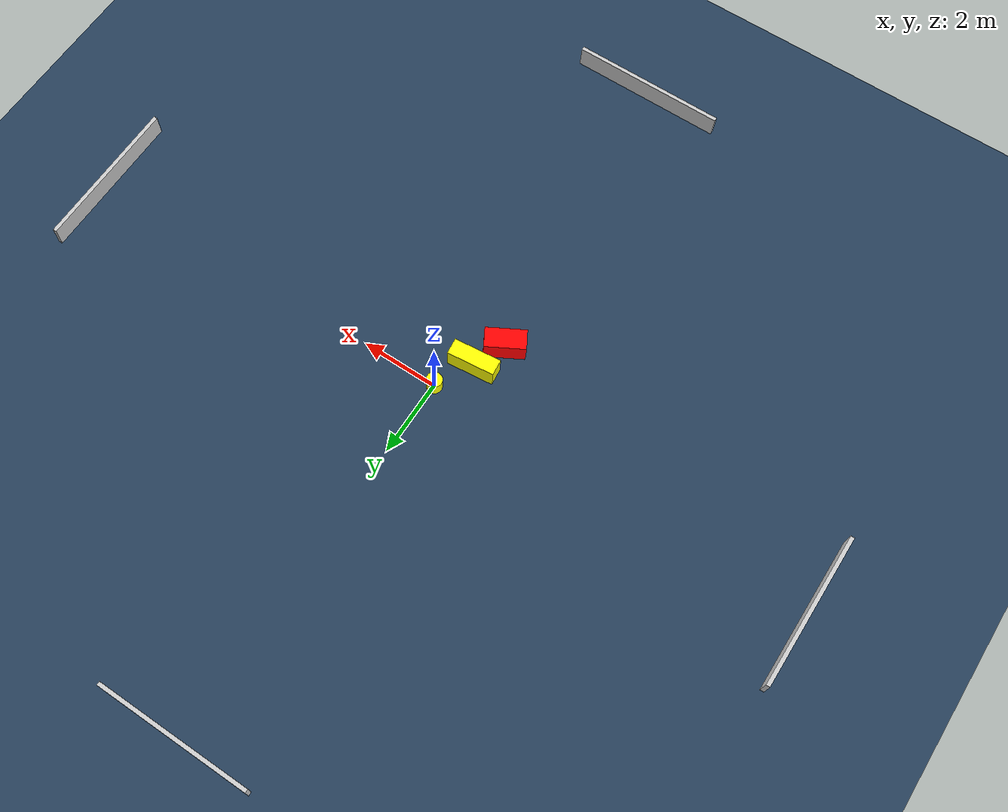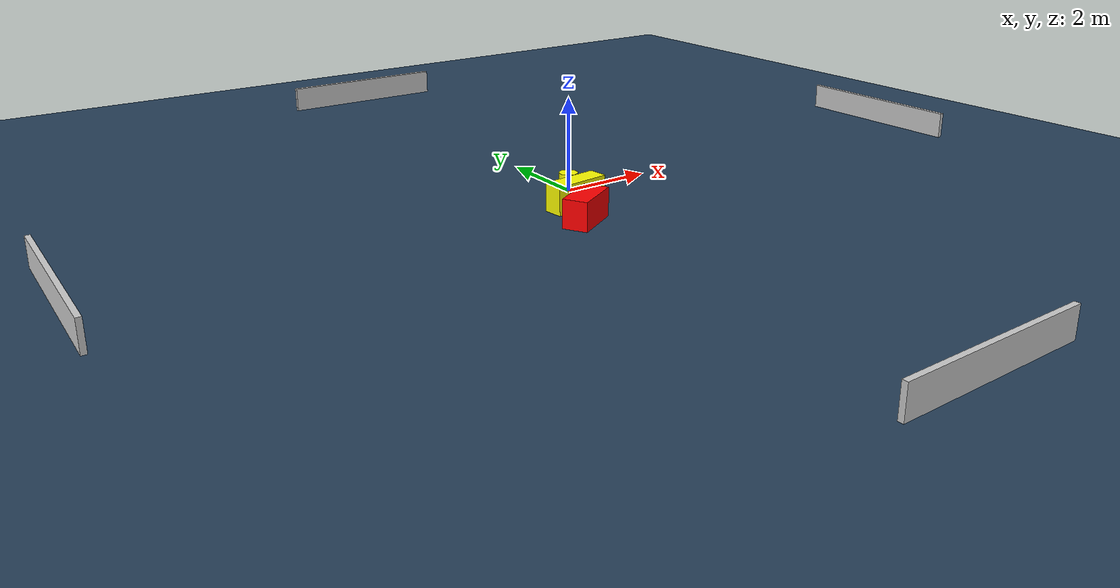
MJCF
<?xml version="1.0" ?>
<mujoco model="generated_environment">
  <option timestep="0.01" integrator="RK4" cone="elliptic"/>
  <default>
    <geom density="1"/>
  </default>
  <asset>
    <texture builtin="gradient" height="3072" name="skybox" rgb1="0.3 0.5 0.7" rgb2="0 0 0" type="skybox" width="512"/>
    <texture builtin="checker" height="300" name="groundplane" rgb1="0.2 0.3 0.4" rgb2="0.1 0.2 0.3" type="2d" width="300"/>
    <material name="groundplane" reflectance="0.2" texrepeat="5 5" texture="groundplane"/>
  </asset>
  <worldbody>
    <light dir="0 0 -1" directional="true" pos="0 0 1.5"/>
    <geom condim="3" friction="0.5 0.005 0.001" material="groundplane" name="floor" pos="0 0 0" size="0 0 0.05" type="plane"/>
    <body name="walls">
      <geom name="wall_1" condim="4" pos="-10.0 0.0 0.3" rgba="0.800000011920929 0.800000011920929 0.800000011920929 1.0" size="0.05 2.0 0.3" type="box"/>
      <geom name="wall_2" condim="4" pos="10.0 0.0 0.3" rgba="0.800000011920929 0.800000011920929 0.800000011920929 1.0" size="0.05 2.0 0.3" type="box"/>
      <geom name="wall_3" condim="4" pos="0.0 -10.0 0.3" rgba="0.800000011920929 0.800000011920929 0.800000011920929 1.0" size="2.0 0.05 0.3" type="box"/>
      <geom name="wall_4" condim="4" pos="0.0 10.0 0.3" rgba="0.800000011920929 0.800000011920929 0.800000011920929 1.0" size="2.0 0.05 0.3" type="box"/>
    </body>
    <body name="robot">
      <joint name="joint_x" type="slide" pos="0 0 0" axis="1 0 0"/>
      <joint name="joint_y" type="slide" pos="0 0 0" axis="0 1 0"/>
      <geom name="robot" type="cylinder" pos="0.0 0.0 0.2" size="0.2 0.2 0.0" mass="5.0" friction="1.0 0.005 0.0001" condim="4" rgba="1.0 1.0 0.0 1.0"/>
    </body>
    <body name="obstacle_1_movable">
      <geom name="obstacle_1_movable" condim="4" pos="-0.49787442291636586 -0.9481612154207042 0.3" euler="0 0 185.95355744926206" friction="0.0 0.005 0.001" rgba="1.0 1.0 0.0 1.0" size="0.6092371355496058 0.2074883956898338 0.3" type="box" mass="0.1"/>
      <joint type="free"/>
    </body>
    <body name="obstacle_2_static">
      <geom name="obstacle_2_static" condim="4" pos="-0.8597026419867907 -1.7762939290169923 0.3" euler="0 0 119.45654141883857" friction="0.0 0.005 0.001" rgba="1.0 0.0 0.0 1.0" size="0.2578289604701865 0.5160567133157933 0.3" type="box"/>
    </body>
  </worldbody>
  <actuator>
    <motor name="actuator_x" joint="joint_x" gear="1" ctrlrange="-1 1"/>
    <motor name="actuator_y" joint="joint_y" gear="1" ctrlrange="-1 1"/>
  </actuator>
</mujoco>
